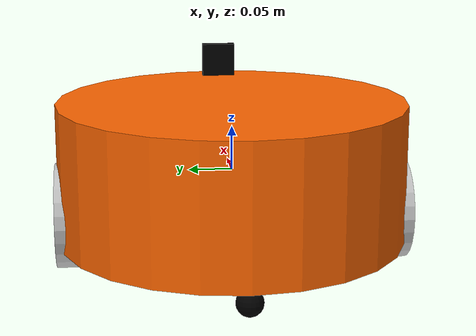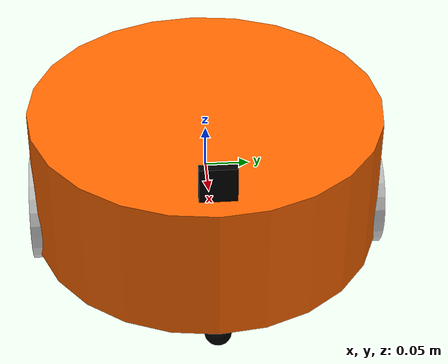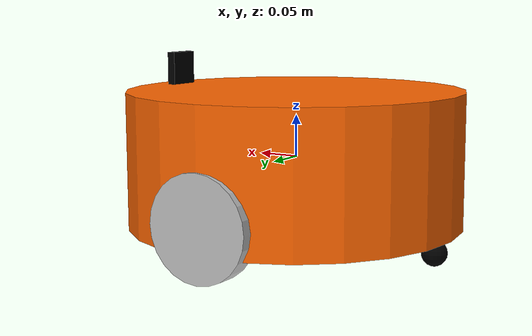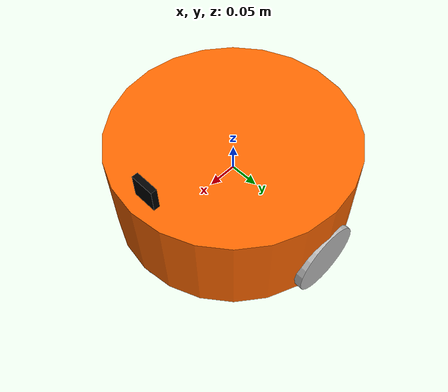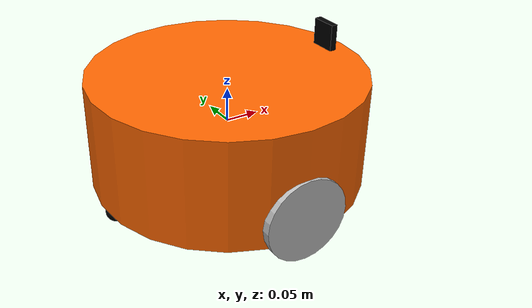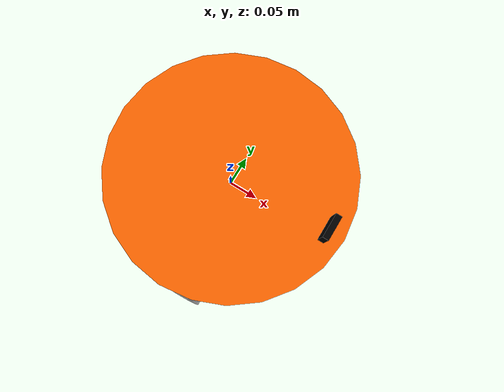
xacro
<?xml version="1.0"?>
<robot name="mbot" xmlns:xacro="http://www.ros.org/wiki/xacro">

    <xacro:include filename="$(find learning_gazebo_fortress)/urdf/mbot_base_gazebo_fortress.xacro" />
    <xacro:include filename="$(find learning_gazebo_fortress)/urdf/sensors/camera_gazebo_fortress.xacro" />

    <xacro:property name="camera_offset_x" value="0.17" />
    <xacro:property name="camera_offset_y" value="0" />
    <xacro:property name="camera_offset_z" value="0.10" />

    <!-- Camera -->
    <joint name="camera_joint" type="fixed">
        <origin xyz="${camera_offset_x} ${camera_offset_y} ${camera_offset_z}" rpy="0 0 0" />
        <parent link="base_link"/>
        <child link="camera_link"/>
    </joint>

    <xacro:usb_camera prefix="camera"/>

    <xacro:mbot_base_gazebo/>

</robot>

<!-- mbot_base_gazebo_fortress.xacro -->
<robot name="mbot" xmlns:xacro="http://www.ros.org/wiki/xacro">
    <!-- PROPERTY LIST -->
    <xacro:property name="M_PI" value="3.1415926"/>
    <xacro:property name="base_mass"   value="1" />
    <xacro:property name="base_radius" value="0.20"/>
    <xacro:property name="base_length" value="0.16"/>

    <xacro:property name="wheel_mass"   value="0.2" />
    <xacro:property name="wheel_radius" value="0.06"/>
    <xacro:property name="wheel_length" value="0.025"/>
    <xacro:property name="wheel_joint_y" value="0.19"/>
    <xacro:property name="wheel_joint_z" value="0.05"/>

    <xacro:property name="caster_mass"    value="0.2" />
    <xacro:property name="caster_radius"  value="0.015"/> <!-- wheel_radius - ( base_length/2 - wheel_joint_z) -->
    <xacro:property name="caster_joint_x" value="0.18"/>

    <!-- Defining the colors used in this robot -->
    <material name="yellow">
        <color rgba="1 0.4 0 1"/>
    </material>
    <material name="black">
        <color rgba="0 0 0 0.95"/>
    </material>
    <material name="gray">
        <color rgba="0.75 0.75 0.75 1"/>
    </material>

    <!-- Macro for inertia matrix -->
    <xacro:macro name="sphere_inertial_matrix" params="m r">
        <inertial>
            <origin xyz="0 0 0" rpy="0 0 0"/>
            <mass value="${m}" />
            <inertia ixx="${2*m*r*r/5}" ixy="0" ixz="0"
                iyy="${2*m*r*r/5}" iyz="0"
                izz="${2*m*r*r/5}" />
        </inertial>
    </xacro:macro>

    <xacro:macro name="cylinder_inertial_matrix" params="m r h">
        <inertial>
            <origin xyz="0 0 0" rpy="0 0 0"/>
            <mass value="${m}" />
            <inertia ixx="${m*(3*r*r+h*h)/12}" ixy = "0" ixz = "0"
                iyy="${m*(3*r*r+h*h)/12}" iyz = "0"
                izz="${m*r*r/2}" />
        </inertial>
    </xacro:macro>

    <!-- Macro for robot wheel -->
    <xacro:macro name="wheel" params="prefix reflect">
        <joint name="${prefix}_wheel_joint" type="continuous">
            <origin xyz="0 ${reflect*wheel_joint_y} ${-wheel_joint_z}" rpy="0 0 0"/>
            <parent link="base_link"/>
            <child link="${prefix}_wheel_link"/>
            <axis xyz="0 1 0"/>
        </joint>

        <link name="${prefix}_wheel_link">
            <collision>
                <origin xyz="0 0 0" rpy="${M_PI/2} 0 0" />
                <geometry>
                    <cylinder radius="${wheel_radius}" length = "${wheel_length}"/>
                </geometry>
            </collision>

            <visual>
                <origin xyz="0 0 0" rpy="${M_PI/2} 0 0" />
                <geometry>
                    <cylinder radius="${wheel_radius}" length = "${wheel_length}"/>
                </geometry>
                <material name="gray" />
            </visual>

            <xacro:cylinder_inertial_matrix  m="${wheel_mass}" r="${wheel_radius}" h="${wheel_length}" />
        </link>

        <gazebo reference="${prefix}_wheel_link">
            <mu1>100000.0</mu1>
            <mu2>100000.0</mu2>
        </gazebo>
    </xacro:macro>

    <!-- Macro for robot caster -->
    <xacro:macro name="caster" params="prefix reflect">
        <joint name="${prefix}_caster_joint" type="fixed">
            <origin xyz="${reflect*caster_joint_x} 0 ${-(base_length/2 + caster_radius)}" rpy="0 0 0"/>
            <parent link="base_link"/>
            <child link="${prefix}_caster_link"/>
        </joint>

        <link name="${prefix}_caster_link">
            <collision>
                <origin xyz="0 0 0" rpy="0 0 0"/>
                <geometry>
                    <sphere radius="${caster_radius}" />
                </geometry>
            </collision>

            <visual>
                <origin xyz="0 0 0" rpy="0 0 0"/>
                <geometry>
                    <sphere radius="${caster_radius}" />
                </geometry>
                <material name="black" />
            </visual>

            <xacro:sphere_inertial_matrix  m="${caster_mass}" r="${caster_radius}" />
        </link>
    </xacro:macro>

    <xacro:macro name="mbot_base_gazebo">
        <link name="base_footprint"/>

        <joint name="base_footprint_joint" type="fixed">
            <parent link="base_footprint"/>
            <child link="base_link" />
        </joint>

        <link name="base_link">
         	<collision>
                <origin xyz=" 0 0 0" rpy="0 0 0" />
                <geometry>
                    <cylinder length="${base_length}" radius="${base_radius}"/>
                </geometry>
            </collision>

            <visual>
                <origin xyz=" 0 0 0" rpy="0 0 0" />
                <geometry>
                    <cylinder length="${base_length}" radius="${base_radius}"/>
                </geometry>
                <material name="yellow" />
            </visual>

            <xacro:cylinder_inertial_matrix  m="${base_mass}" r="${base_radius}" h="${base_length}" />
        </link>

        <xacro:wheel prefix="left"  reflect="1"/>
        <xacro:wheel prefix="right" reflect="-1"/>

        <xacro:caster prefix="front" reflect="-1"/>
        <xacro:caster prefix="back"  reflect="1"/>

        <!-- controller -->
        <gazebo>
            <plugin filename="libignition-gazebo-diff-drive-system.so"
                    name="ignition::gazebo::systems::DiffDrive">
                  <update_rate>30</update_rate>
                  <left_joint>left_wheel_joint</left_joint>
                  <right_joint>right_wheel_joint</right_joint>
                  <wheel_separation>${wheel_joint_y*2}</wheel_separation>
                  <wheel_radius>${wheel_radius}</wheel_radius>
                  <topic>cmd_vel</topic>
                  <publish_odom>true</publish_odom>
                  <publish_odom_tf>true</publish_odom_tf>
                  <publish_wheel_tf>true</publish_wheel_tf>
                  <odometry_topic>odom</odometry_topic>
                  <odometry_frame>odom</odometry_frame>
                  <robot_base_frame>base_footprint</robot_base_frame>
            </plugin>
            <plugin
				filename="ignition-gazebo-sensors-system"
				name="ignition::gazebo::systems::Sensors">
				<render_engine>ogre</render_engine>
			</plugin>
			<plugin
				filename="ignition-gazebo-user-commands-system"
				name="ignition::gazebo::systems::UserCommands">
			</plugin>
			<plugin
				filename="ignition-gazebo-scene-broadcaster-system"
				name="ignition::gazebo::systems::SceneBroadcaster">
			</plugin>
			<plugin
				filename="ignition-gazebo-joint-state-publisher-system"
				name="ignition::gazebo::systems::JointStatePublisher"/>
			<plugin
				filename="ignition-gazebo-odometry-publisher-system"
				name="ignition::gazebo::systems::OdometryPublisher">
				<odom_frame>odom</odom_frame>
				<robot_base_frame>base_footprint</robot_base_frame>
			</plugin>
        </gazebo>
    </xacro:macro>

</robot>

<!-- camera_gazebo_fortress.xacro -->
<robot xmlns:xacro="http://www.ros.org/wiki/xacro" name="camera">

    <xacro:macro name="usb_camera" params="prefix:=camera">
        <!-- Create laser reference frame -->
        <link name="${prefix}_link">
            <inertial>
                <mass value="0.1" />
                <origin xyz="0 0 0" />
                <inertia ixx="0.01" ixy="0.0" ixz="0.0"
                         iyy="0.01" iyz="0.0"
                         izz="0.01" />
            </inertial>

            <visual>
                <origin xyz=" 0 0 0 " rpy="0 0 0" />
                <geometry>
                    <box size="0.01 0.04 0.04" />
                </geometry>
                <material name="black"/>
            </visual>

            <collision>
                <origin xyz="0.0 0.0 0.0" rpy="0 0 0" />
                <geometry>
                    <box size="0.01 0.04 0.04" />
                </geometry>
            </collision>
        </link>
        <gazebo reference="${prefix}_link">
            <material>Gazebo/Black</material>
        </gazebo>

        <gazebo reference="${prefix}_link">
            <sensor type="camera" name="camera_node">
 				<always_on>true</always_on>
                <ignition_frame_id>${prefix}_link</ignition_frame_id>
                <visualize>true</visualize>
                <topic>camera</topic>
                <update_rate>10.0</update_rate>
                <camera name="${prefix}">
                    <horizontal_fov>1.3962634</horizontal_fov>
                    <pose>0 0 0 0 0 0</pose>
                    <image>
                        <width>640</width>
                        <height>480</height>
                        <format>R8G8B8</format>
                    </image>
                    <clip>
                        <near>0.005</near>
                        <far>20.0</far>
                    </clip>
                    <noise>
                        <type>gaussian</type>
                        <mean>0.0</mean>
                        <stddev>0.007</stddev>
                    </noise>
                </camera>
            </sensor>
        </gazebo>

    </xacro:macro>
</robot>
